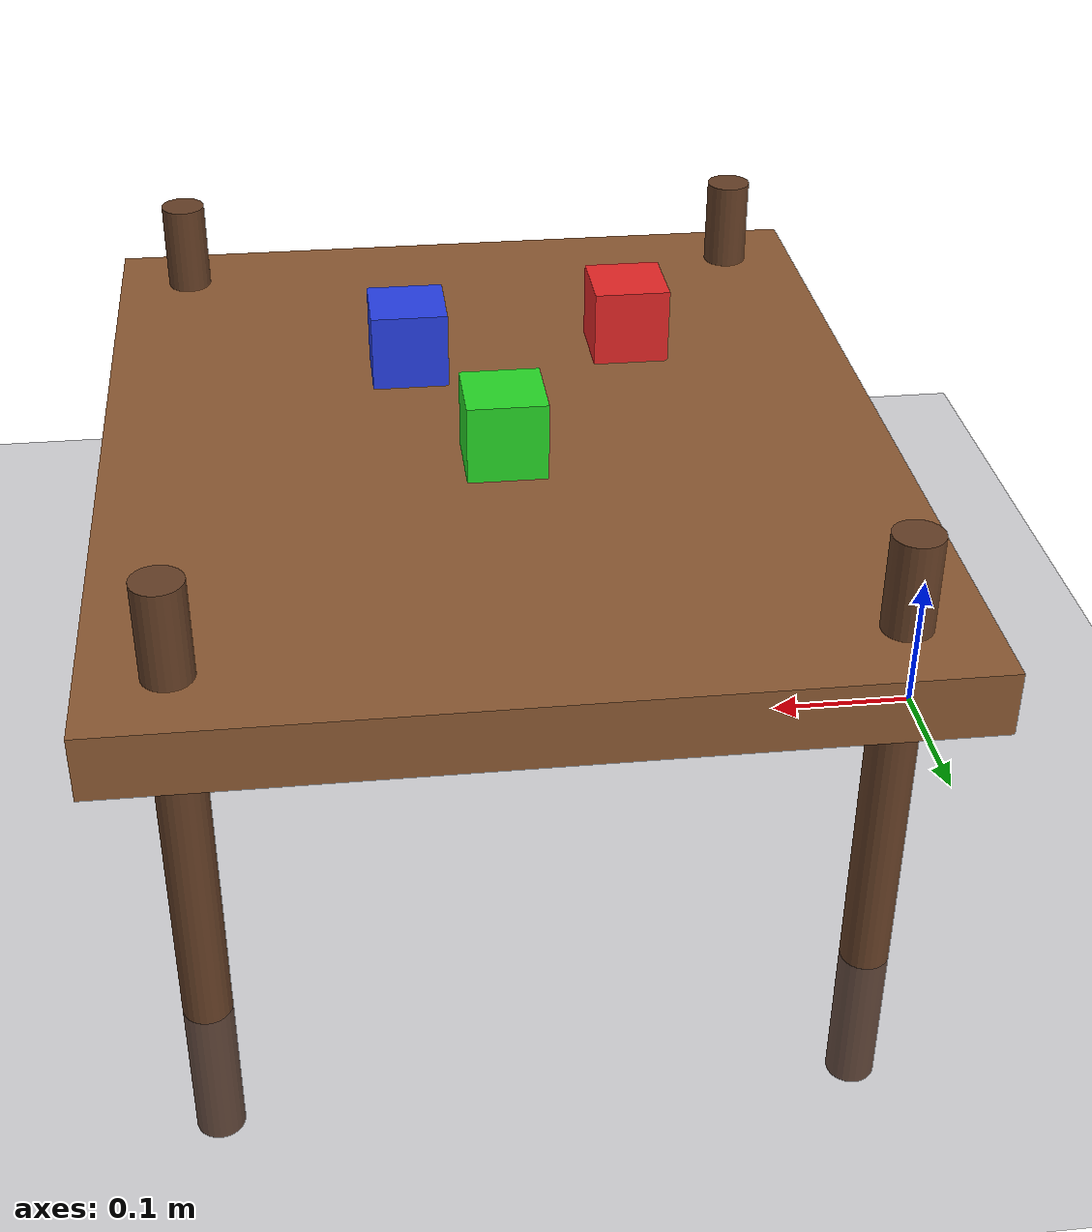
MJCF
<mujoco model="minimal_test">
  <visual>
    <headlight diffuse="0.6 0.6 0.6" ambient="0.3 0.3 0.3" specular="0 0 0"/>
  </visual>
  <worldbody>
    <geom name="floor" pos="0 0 -0.001" size="0 0 1" type="plane" rgba="0.3 0.3 0.35 1"/>

    <!-- Table -->
    <body name="table" pos="0.3 0 0">
      <geom name="table_top" type="box" size="0.25 0.3 0.02" pos="0 0 0.22" rgba="0.55 0.35 0.2 1"/>
      <geom name="leg_fl" type="cylinder" size="0.015 0.2" pos="0.2 0.25 0.1" rgba="0.4 0.25 0.15 1"/>
      <geom name="leg_fr" type="cylinder" size="0.015 0.2" pos="0.2 -0.25 0.1" rgba="0.4 0.25 0.15 1"/>
      <geom name="leg_bl" type="cylinder" size="0.015 0.2" pos="-0.2 0.25 0.1" rgba="0.4 0.25 0.15 1"/>
      <geom name="leg_br" type="cylinder" size="0.015 0.2" pos="-0.2 -0.25 0.1" rgba="0.4 0.25 0.15 1"/>
    </body>

    <!-- Three cubes -->
    <body name="cube_red" pos="0.2 -0.1 0.27">
      <freejoint/>
      <geom name="cube_red_geom" type="box" size="0.025 0.025 0.025" rgba="0.9 0.15 0.15 1"/>
    </body>
    <body name="cube_green" pos="0.3 0.05 0.27">
      <freejoint/>
      <geom name="cube_green_geom" type="box" size="0.025 0.025 0.025" rgba="0.15 0.85 0.15 1"/>
    </body>
    <body name="cube_blue" pos="0.35 -0.08 0.27">
      <freejoint/>
      <geom name="cube_blue_geom" type="box" size="0.025 0.025 0.025" rgba="0.15 0.25 0.9 1"/>
    </body>
  </worldbody>
</mujoco>
